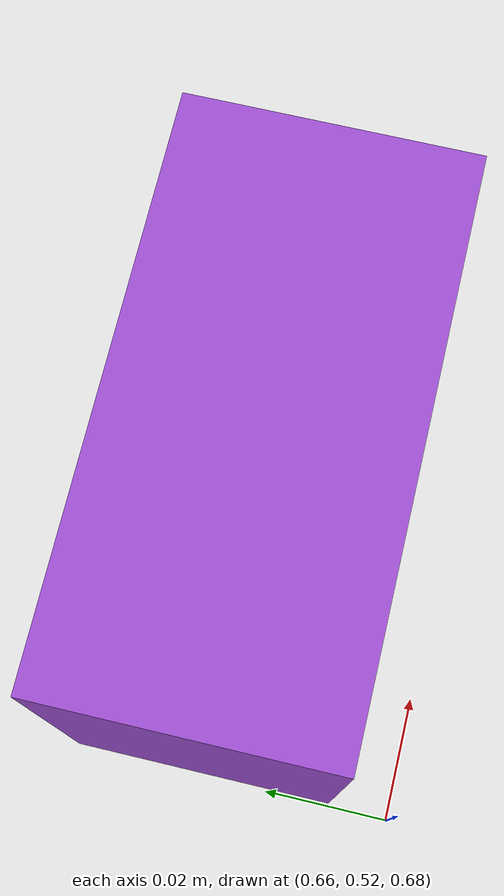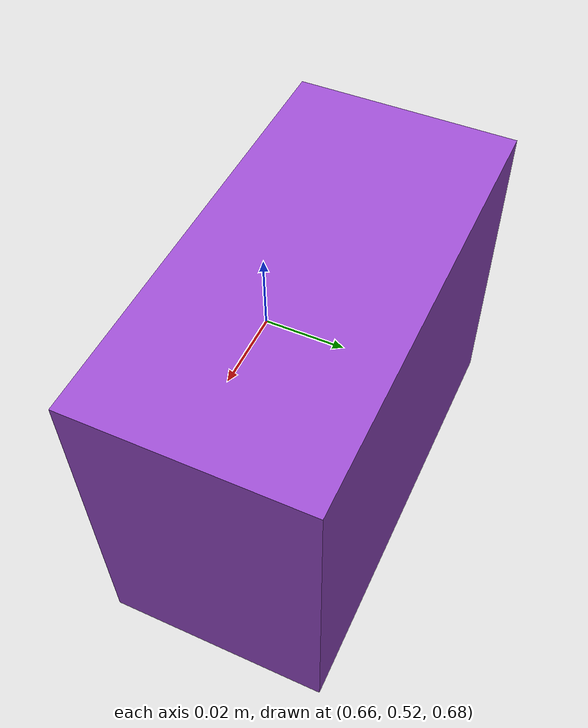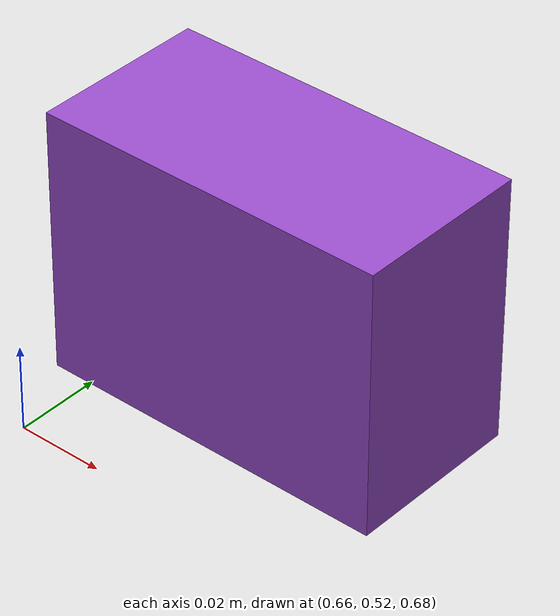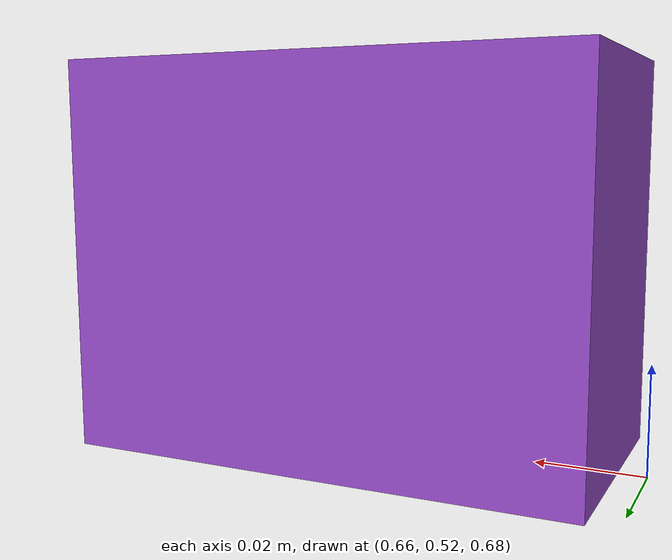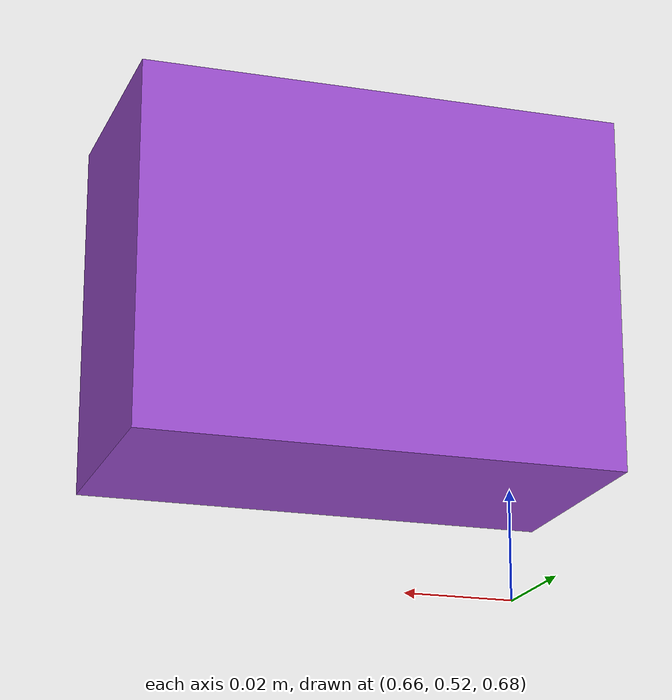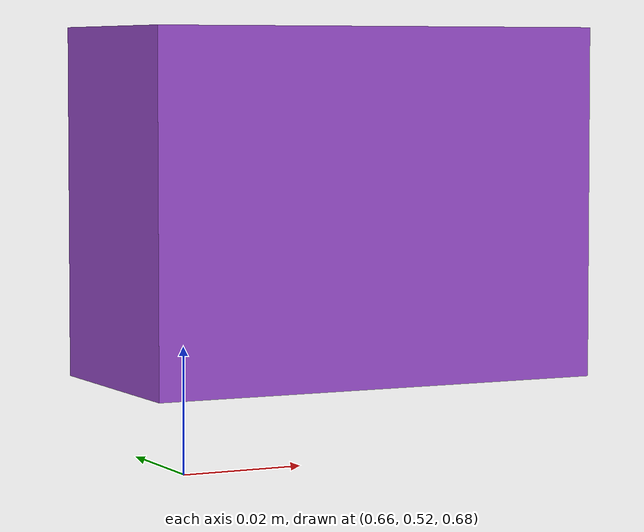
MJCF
<mujoco model="purple_object">
  <!-- Movable purple object with freejoint -->
  <worldbody>
    <body name="right_table_item2" pos="0.7 0.55 0.72">
      <freejoint name="right_table_item2_joint"/>
      <geom name="right_item2" type="box" size="0.04 0.02 0.03" rgba="0.6 0.3 0.8 1"/>
      <inertial pos="0 0 0" mass="0.12" diaginertia="0.0001 0.0001 0.0001"/>
    </body>
  </worldbody>
</mujoco>
